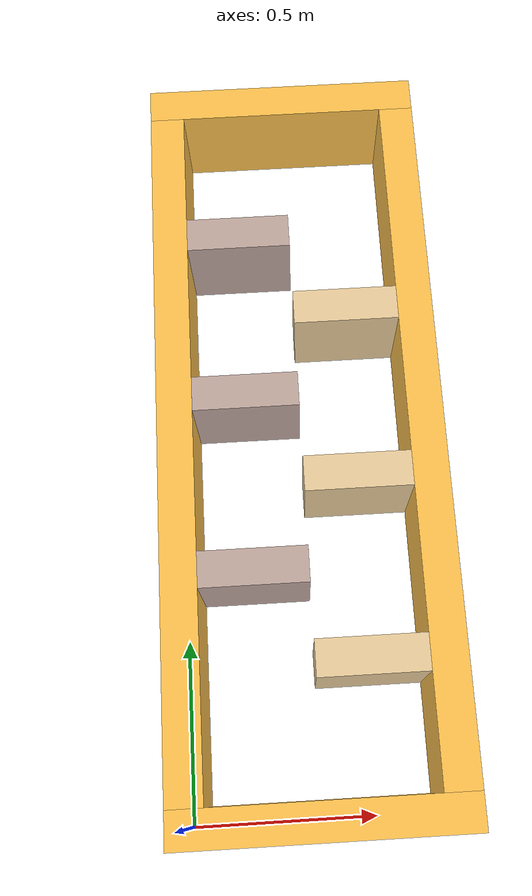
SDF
<?xml version='1.0'?>
<sdf version='1.6'>
  <model name='qmp_map'>
    <pose frame=''>0.35 1.05 0 0 -0 0</pose>
    <link name='Wall_0'>
      <collision name='Wall_0_Collision'>
        <geometry>
          <box>
            <size>2 0.1 0.3</size>
          </box>
        </geometry>
        <pose frame=''>0 0 0.15 0 -0 0</pose>
      </collision>
      <visual name='Wall_0_Visual'>
        <pose frame=''>0 0 0.15 0 -0 0</pose>
        <geometry>
          <box>
            <size>2 0.1 0.3</size>
          </box>
        </geometry>
        <material>
          <script>
            <uri>file://media/materials/scripts/gazebo.material</uri>
            <name>Gazebo/Grey</name>
          </script>
          <ambient>1 0.764706 0.305882 1</ambient>
        </material>
        <meta>
          <layer>0</layer>
        </meta>
      </visual>
      <pose frame=''>-0.35 0 0 0 -0 1.5708</pose>
    </link>
    <link name='Wall_10'>
      <collision name='Wall_10_Collision'>
        <geometry>
          <box>
            <size>0.3 0.1 0.3</size>
          </box>
        </geometry>
        <pose frame=''>0 0 0.15 0 -0 0</pose>
      </collision>
      <visual name='Wall_10_Visual'>
        <pose frame=''>0 0 0.15 0 -0 0</pose>
        <geometry>
          <box>
            <size>0.3 0.1 0.3</size>
          </box>
        </geometry>
        <material>
          <script>
            <uri>file://media/materials/scripts/gazebo.material</uri>
            <name>Gazebo/Grey</name>
          </script>
          <ambient>0.921569 0.807843 0.615686 1</ambient>
        </material>
        <meta>
          <layer>0</layer>
        </meta>
      </visual>
      <pose frame=''>0.15 -0.15 0 0 -0 3.14159</pose>
    </link>
    <link name='Wall_12'>
      <collision name='Wall_12_Collision'>
        <geometry>
          <box>
            <size>0.3 0.1 0.3</size>
          </box>
        </geometry>
        <pose frame=''>0 0 0.15 0 -0 0</pose>
      </collision>
      <visual name='Wall_12_Visual'>
        <pose frame=''>0 0 0.15 0 -0 0</pose>
        <geometry>
          <box>
            <size>0.3 0.1 0.3</size>
          </box>
        </geometry>
        <material>
          <script>
            <uri>file://media/materials/scripts/gazebo.material</uri>
            <name>Gazebo/Grey</name>
          </script>
          <ambient>0.921569 0.807843 0.615686 1</ambient>
        </material>
        <meta>
          <layer>0</layer>
        </meta>
      </visual>
      <pose frame=''>0.15 0.35 0 0 -0 3.14159</pose>
    </link>
    <link name='Wall_14'>
      <collision name='Wall_14_Collision'>
        <geometry>
          <box>
            <size>0.3 0.1 0.3</size>
          </box>
        </geometry>
        <pose frame=''>0 0 0.15 0 -0 0</pose>
      </collision>
      <visual name='Wall_14_Visual'>
        <pose frame=''>0 0 0.15 0 -0 0</pose>
        <geometry>
          <box>
            <size>0.3 0.1 0.3</size>
          </box>
        </geometry>
        <material>
          <script>
            <uri>file://media/materials/scripts/gazebo.material</uri>
            <name>Gazebo/Grey</name>
          </script>
          <ambient>0.760784 0.662745 0.627451 1</ambient>
        </material>
        <meta>
          <layer>0</layer>
        </meta>
      </visual>
      <pose frame=''>-0.15 -0.4 0 0 -0 0</pose>
    </link>
    <link name='Wall_16'>
      <collision name='Wall_16_Collision'>
        <geometry>
          <box>
            <size>0.3 0.1 0.3</size>
          </box>
        </geometry>
        <pose frame=''>0 0 0.15 0 -0 0</pose>
      </collision>
      <visual name='Wall_16_Visual'>
        <pose frame=''>0 0 0.15 0 -0 0</pose>
        <geometry>
          <box>
            <size>0.3 0.1 0.3</size>
          </box>
        </geometry>
        <material>
          <script>
            <uri>file://media/materials/scripts/gazebo.material</uri>
            <name>Gazebo/Grey</name>
          </script>
          <ambient>0.760784 0.662745 0.627451 1</ambient>
        </material>
        <meta>
          <layer>0</layer>
        </meta>
      </visual>
      <pose frame=''>-0.15 0.1 0 0 -0 0</pose>
    </link>
    <link name='Wall_18'>
      <collision name='Wall_18_Collision'>
        <geometry>
          <box>
            <size>0.3 0.1 0.3</size>
          </box>
        </geometry>
        <pose frame=''>0 0 0.15 0 -0 0</pose>
      </collision>
      <visual name='Wall_18_Visual'>
        <pose frame=''>0 0 0.15 0 -0 0</pose>
        <geometry>
          <box>
            <size>0.3 0.1 0.3</size>
          </box>
        </geometry>
        <material>
          <script>
            <uri>file://media/materials/scripts/gazebo.material</uri>
            <name>Gazebo/Grey</name>
          </script>
          <ambient>0.760784 0.662745 0.627451 1</ambient>
        </material>
        <meta>
          <layer>0</layer>
        </meta>
      </visual>
      <pose frame=''>-0.15 0.6 0 0 -0 0</pose>
    </link>
    <link name='Wall_2'>
      <collision name='Wall_2_Collision'>
        <geometry>
          <box>
            <size>2 0.1 0.3</size>
          </box>
        </geometry>
        <pose frame=''>0 0 0.15 0 -0 0</pose>
      </collision>
      <visual name='Wall_2_Visual'>
        <pose frame=''>0 0 0.15 0 -0 0</pose>
        <geometry>
          <box>
            <size>2 0.1 0.3</size>
          </box>
        </geometry>
        <material>
          <script>
            <uri>file://media/materials/scripts/gazebo.material</uri>
            <name>Gazebo/Grey</name>
          </script>
          <ambient>1 0.764706 0.305882 1</ambient>
        </material>
        <meta>
          <layer>0</layer>
        </meta>
      </visual>
      <pose frame=''>0.35 0 0 0 -0 1.5708</pose>
    </link>
    <link name='Wall_4'>
      <collision name='Wall_4_Collision'>
        <geometry>
          <box>
            <size>0.8 0.1 0.3</size>
          </box>
        </geometry>
        <pose frame=''>0 0 0.15 0 -0 0</pose>
      </collision>
      <visual name='Wall_4_Visual'>
        <pose frame=''>0 0 0.15 0 -0 0</pose>
        <geometry>
          <box>
            <size>0.8 0.1 0.3</size>
          </box>
        </geometry>
        <material>
          <script>
            <uri>file://media/materials/scripts/gazebo.material</uri>
            <name>Gazebo/Grey</name>
          </script>
          <ambient>1 0.764706 0.305882 1</ambient>
        </material>
        <meta>
          <layer>0</layer>
        </meta>
      </visual>
      <pose frame=''>-0 -1.05 0 0 -0 0</pose>
    </link>
    <link name='Wall_6'>
      <collision name='Wall_6_Collision'>
        <geometry>
          <box>
            <size>0.8 0.1 0.3</size>
          </box>
        </geometry>
        <pose frame=''>0 0 0.15 0 -0 0</pose>
      </collision>
      <visual name='Wall_6_Visual'>
        <pose frame=''>0 0 0.15 0 -0 0</pose>
        <geometry>
          <box>
            <size>0.8 0.1 0.3</size>
          </box>
        </geometry>
        <material>
          <script>
            <uri>file://media/materials/scripts/gazebo.material</uri>
            <name>Gazebo/Grey</name>
          </script>
          <ambient>1 0.764706 0.305882 1</ambient>
        </material>
        <meta>
          <layer>0</layer>
        </meta>
      </visual>
      <pose frame=''>-0 1.05 0 0 -0 0</pose>
    </link>
    <link name='Wall_8'>
      <collision name='Wall_8_Collision'>
        <geometry>
          <box>
            <size>0.3 0.1 0.3</size>
          </box>
        </geometry>
        <pose frame=''>0 0 0.15 0 -0 0</pose>
      </collision>
      <visual name='Wall_8_Visual'>
        <pose frame=''>0 0 0.15 0 -0 0</pose>
        <geometry>
          <box>
            <size>0.3 0.1 0.3</size>
          </box>
        </geometry>
        <material>
          <script>
            <uri>file://media/materials/scripts/gazebo.material</uri>
            <name>Gazebo/Grey</name>
          </script>
          <ambient>0.921569 0.807843 0.615686 1</ambient>
        </material>
        <meta>
          <layer>0</layer>
        </meta>
      </visual>
      <pose frame=''>0.15 -0.65 0 0 -0 3.14159</pose>
    </link>
    <static>1</static>
  </model>
</sdf>
